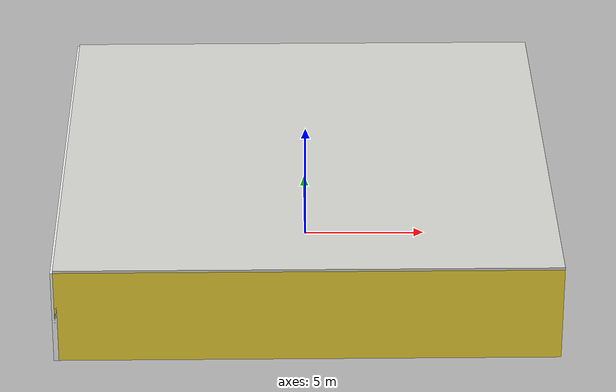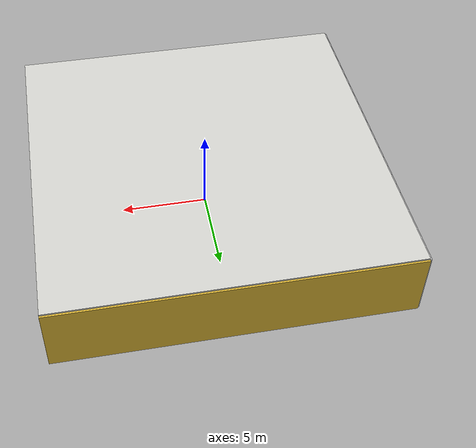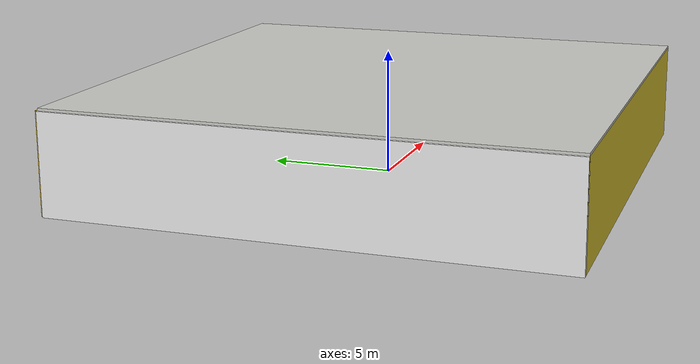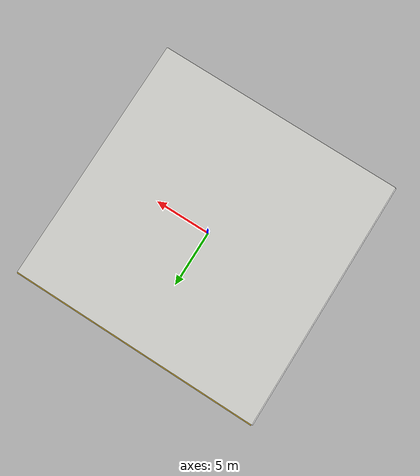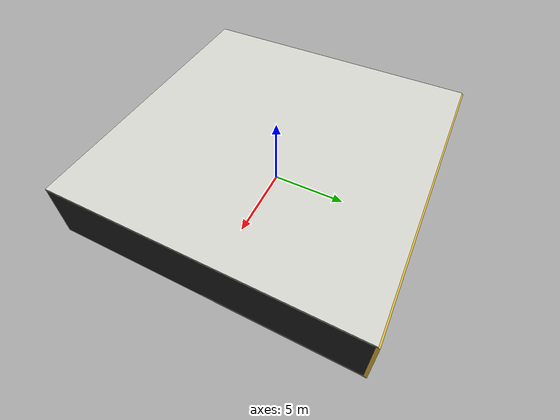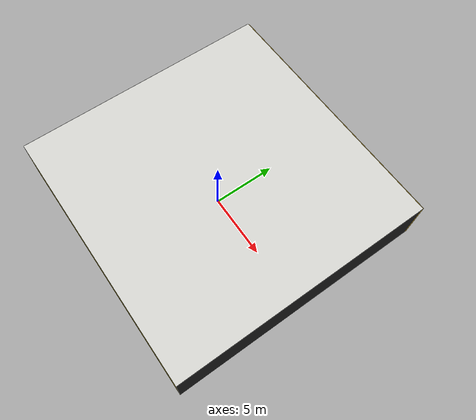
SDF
<sdf version="1.4">
 <world name="default">
  <physics type="ode">
   <max_step_size>0.001</max_step_size>
   <real_time_factor>1</real_time_factor>
   <real_time_update_rate>1000</real_time_update_rate>
   <gravity>0 0 -9.8</gravity>
  </physics>
  <scene><ambient>0.4 0.4 0.4 1</ambient><background>0.7 0.7 0.7 1</background><shadows>1</shadows></scene>
  <model name="Surrounding">
   <static>1</static>
   <link name="Ceiling">
    <collision name="Ceiling_Collision"><geometry><box><size>20 20 0.1</size></box></geometry></collision>
    <visual name="Ceiling_Visual">
     <geometry><box><size>20 20 0.1</size></box></geometry>
     <material>
      <script><uri>file://media/materials/scripts/gazebo.material</uri><name>Gazebo/CeilingTiled</name></script>
     </material>
    </visual>
    <pose>0 0 4.05 0 0 0</pose>
   </link>
   <link name="Wall_South">
    <collision name="Wall_South_Collision">
     <geometry><box><size>20 0 4</size></box></geometry>
     <pose>0 0 2 0 -0 0</pose>
    </collision>
    <visual name="Wall_South_Visual">
     <pose>0 0 2 0 -0 0</pose>
     <geometry><box><size>20 0 4</size></box></geometry>
     <material>
      <script><uri>file://media/materials/scripts/gazebo.material</uri><name>Gazebo/ZincYellow</name></script>
     </material>
    </visual>
    <velocity_decay><linear>0</linear><angular>0</angular></velocity_decay>
    <pose>0 -10 0 0 -0 0</pose>
   </link>
   <link name="Wall_East">
    <collision name="Wall_21_Collision">
     <geometry><box><size>20 0 4</size></box></geometry>
     <pose>0 0 2 0 -0 0</pose>
    </collision>
    <visual name="Wall_21_Visual">
     <pose>0 0 2 0 -0 0</pose>
     <geometry><box><size>20 0 4</size></box></geometry>
     <material>
      <script><uri>file://media/materials/scripts/gazebo.material</uri><name>Gazebo/Black</name></script>
     </material>
    </visual>
    <velocity_decay><linear>0</linear><angular>0</angular></velocity_decay>
    <pose>10 0 0 0 -0 1.5708</pose>
   </link>
   <link name="Wall_North">
    <collision name="Wall_22_Collision">
     <geometry><box><size>20 0.2 4</size></box></geometry>
     <pose>0 0 2 0 -0 0</pose>
    </collision>
    <visual name="Wall_22_Visual">
     <pose>0 0 2 0 -0 0</pose>
     <geometry><box><size>20 0.2 4</size></box></geometry>
     <material>
      <script><uri>file://media/materials/scripts/gazebo.material</uri><name>Gazebo/Gold</name></script>
     </material>
    </visual>
    <velocity_decay><linear>0</linear><angular>0</angular></velocity_decay>
    <pose>0 10 0 0 -0 0</pose>
   </link>
   <link name="Wall_West">
    <collision name="Wall_23_Collision">
     <geometry><box><size>20 0.2 4</size></box></geometry>
     <pose>0 0 2 0 -0 0</pose>
    </collision>
    <visual name="Wall_23_Visual">
     <pose>0 0 2 0 -0 0</pose>
     <geometry><box><size>20 0.2 4</size></box></geometry>
     <material>
      <script><uri>file://media/materials/scripts/gazebo.material</uri><name>Gazebo/WhiteGlow</name></script>
     </material>
    </visual>
    <velocity_decay><linear>0</linear><angular>0</angular></velocity_decay>
    <pose>-10 0 0 0 0 -1.5708</pose>
   </link>
   <link name="Ground_link">
    <collision name="collision">
     <pose>0 0 .05 0 -0 0</pose>
     <geometry><box><size>20 20 0.1</size></box></geometry>
    </collision>
    <visual name="visual">
     <pose>0 0 .05 0 -0 0</pose>
     <geometry><box><size>20 20 0.1</size></box></geometry>
     <material>
      <script><uri>file://media/materials/scripts/gazebo.material</uri><name>Gazebo/White</name></script>
     </material>
    </visual>
   </link>
   <static>1</static>
  </model>
  <spherical_coordinates>
   <surface_model>EARTH_WGS84</surface_model>
   <latitude_deg>0</latitude_deg>
   <longitude_deg>0</longitude_deg>
   <elevation>0</elevation>
   <heading_deg>0</heading_deg>
  </spherical_coordinates>
  <light name="lightball_0" type="diffuse">
   <diffuse>0.8 0.8 0.8 1</diffuse>
   <specular>0.2 0.2 0.2 1</specular>
   <attenuation>
    <range>100</range>
    <constant>0.7</constant>
    <linear>0.01</linear>
    <quadratic>0.001</quadratic>
   </attenuation>
   <direction>-0.5 0.1 -0.9</direction>
   <pose>-6.91757418397 -0.336292887298 2.29698274023 0 0 0</pose>
  </light>
  <light name="lightball_1" type="diffuse">
   <diffuse>0.8 0.8 0.8 1</diffuse>
   <specular>0.2 0.2 0.2 1</specular>
   <attenuation>
    <range>100</range>
    <constant>0.7</constant>
    <linear>0.01</linear>
    <quadratic>0.001</quadratic>
   </attenuation>
   <direction>-0.5 0.1 -0.9</direction>
   <pose>-4.98469357859 7.35562595604 1.81581535911 0 0 0</pose>
  </light>
  <light name="lightball_2" type="diffuse">
   <diffuse>0.8 0.8 0.8 1</diffuse>
   <specular>0.2 0.2 0.2 1</specular>
   <attenuation>
    <range>100</range>
    <constant>0.7</constant>
    <linear>0.01</linear>
    <quadratic>0.001</quadratic>
   </attenuation>
   <direction>-0.5 0.1 -0.9</direction>
   <pose>-9.92691574009 -9.99332740523 1.49462027829 0 0 0</pose>
  </light>
  <light name="lightball_3" type="diffuse">
   <diffuse>0.8 0.8 0.8 1</diffuse>
   <specular>0.2 0.2 0.2 1</specular>
   <attenuation>
    <range>100</range>
    <constant>0.7</constant>
    <linear>0.01</linear>
    <quadratic>0.001</quadratic>
   </attenuation>
   <direction>-0.5 0.1 -0.9</direction>
   <pose>1.50233248083 3.22421596363 1.56227856649 0 0 0</pose>
  </light>
  <light name="lightball_4" type="diffuse">
   <diffuse>0.8 0.8 0.8 1</diffuse>
   <specular>0.2 0.2 0.2 1</specular>
   <attenuation>
    <range>100</range>
    <constant>0.7</constant>
    <linear>0.01</linear>
    <quadratic>0.001</quadratic>
   </attenuation>
   <direction>-0.5 0.1 -0.9</direction>
   <pose>-7.61455705853 0.849993916667 3.58259069603 0 0 0</pose>
  </light>
  <light name="lightball_5" type="diffuse">
   <diffuse>0.8 0.8 0.8 1</diffuse>
   <specular>0.2 0.2 0.2 1</specular>
   <attenuation>
    <range>100</range>
    <constant>0.7</constant>
    <linear>0.01</linear>
    <quadratic>0.001</quadratic>
   </attenuation>
   <direction>-0.5 0.1 -0.9</direction>
   <pose>9.42647925764 -8.5240315955 1.00658761716 0 0 0</pose>
  </light>
  <light name="lightball_6" type="diffuse">
   <diffuse>0.8 0.8 0.8 1</diffuse>
   <specular>0.2 0.2 0.2 1</specular>
   <attenuation>
    <range>100</range>
    <constant>0.7</constant>
    <linear>0.01</linear>
    <quadratic>0.001</quadratic>
   </attenuation>
   <direction>-0.5 0.1 -0.9</direction>
   <pose>5.87564491231 -8.87417915666 0.876904885885 0 0 0</pose>
  </light>
  <light name="lightball_7" type="diffuse">
   <diffuse>0.8 0.8 0.8 1</diffuse>
   <specular>0.2 0.2 0.2 1</specular>
   <attenuation>
    <range>100</range>
    <constant>0.7</constant>
    <linear>0.01</linear>
    <quadratic>0.001</quadratic>
   </attenuation>
   <direction>-0.5 0.1 -0.9</direction>
   <pose>0.766086935177 0.2681473589 3.27348682312 0 0 0</pose>
  </light>
  <light name="lightball_8" type="diffuse">
   <diffuse>0.8 0.8 0.8 1</diffuse>
   <specular>0.2 0.2 0.2 1</specular>
   <attenuation>
    <range>100</range>
    <constant>0.7</constant>
    <linear>0.01</linear>
    <quadratic>0.001</quadratic>
   </attenuation>
   <direction>-0.5 0.1 -0.9</direction>
   <pose>3.48558161023 -3.67317749882 2.87715166579 0 0 0</pose>
  </light>
  <light name="lightball_9" type="diffuse">
   <diffuse>0.8 0.8 0.8 1</diffuse>
   <specular>0.2 0.2 0.2 1</specular>
   <attenuation>
    <range>100</range>
    <constant>0.7</constant>
    <linear>0.01</linear>
    <quadratic>0.001</quadratic>
   </attenuation>
   <direction>-0.5 0.1 -0.9</direction>
   <pose>-0.371508159079 -9.45678300232 2.34289552052 0 0 0</pose>
  </light>
  <light name="lightball_10" type="diffuse">
   <diffuse>0.8 0.8 0.8 1</diffuse>
   <specular>0.2 0.2 0.2 1</specular>
   <attenuation>
    <range>100</range>
    <constant>0.7</constant>
    <linear>0.01</linear>
    <quadratic>0.001</quadratic>
   </attenuation>
   <direction>-0.5 0.1 -0.9</direction>
   <pose>-1.17956673407 -7.33612454215 0.855936445213 0 0 0</pose>
  </light>
  <include>
   <uri>model://textured_shapes</uri>
   <pose>-3.75764248063 -5.24849214154 0 0 0 2.81809932388</pose>
  </include>
  <include>
   <uri>model://textured_shapes</uri>
   <pose>-3.83775474988 7.21098635594 0 0 0 2.33054544448</pose>
  </include>
  <include><uri>model://table</uri><pose>4.31507981613 4.08992291775 0 0 0 1.68256351216</pose></include>
  <include>
   <uri>model://construction_cone</uri>
   <pose>4.9341937116 7.7878998793 0 0 0 0.116738674569</pose>
  </include>
  <include><uri>model://table</uri><pose>7.1707373835 -2.27744695906 0 0 0 0.116642709235</pose></include>
 </world>
</sdf>

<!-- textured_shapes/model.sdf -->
<sdf version="1.6">
  <model name="textured_shapes">
    <pose>0 0 0.5 0 0 0</pose>
    <link name="box">
      <pose>0 -1.5 0 0 0 0</pose>
      <collision name="collision">
        <geometry>
          <box>
            <size>1 1 1</size>
          </box>
        </geometry>
      </collision>
      <visual name="visual">
        <geometry>
          <box>
            <size>1 1 1</size>
          </box>
        </geometry>
        <material>
          <script>
            <uri>model://../model_source/models/textured_shapes/materials/scripts</uri>
            <uri>model://../model_source/models/textured_shapes/materials/textures</uri>
            <name>TexturedShape/Squares</name>
          </script>
        </material>
      </visual>
    </link>
    <link name="sphere">
      <collision name="collision">
        <geometry>
          <sphere>
            <radius>0.5</radius>
          </sphere>
        </geometry>
      </collision>
      <visual name="visual">
        <geometry>
          <sphere>
            <radius>0.5</radius>
          </sphere>
        </geometry>
        <material>
          <script>
            <uri>model://../model_source/models/textured_shapes/materials/scripts</uri>
            <uri>model://../model_source/models/textured_shapes/materials/textures</uri>
            <name>TexturedShape/Squares</name>
          </script>
        </material>
      </visual>
    </link>
    <link name="cylinder">
      <pose>0 1.5 0 0 0 0</pose>
      <collision name="collision">
        <geometry>
          <cylinder>
            <radius>0.5</radius>
            <length>1</length>
          </cylinder>
        </geometry>
      </collision>
      <visual name="visual">
        <geometry>
          <cylinder>
            <radius>0.5</radius>
            <length>1</length>
          </cylinder>
        </geometry>
        <material>
          <script>
            <uri>model://../model_source/models/textured_shapes/materials/scripts</uri>
            <uri>model://../model_source/models/textured_shapes/materials/textures</uri>
            <name>TexturedShape/Squares</name>
          </script>
        </material>
      </visual>
    </link>
  </model>
</sdf>

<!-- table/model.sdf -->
<sdf version="1.5">
  <model name="table">
    <static>true</static>
    <link name="link">
      <collision name="surface">
        <pose>0 0 1.0 0 0 0</pose>
        <geometry>
          <box>
            <size>1.5 0.8 0.03</size>
          </box>
        </geometry>
        <surface>
          <friction>
            <ode>
              <mu>0.6</mu>
              <mu2>0.6</mu2>
            </ode>
          </friction>
        </surface>
      </collision>
      <visual name="visual1">
        <pose>0 0 1.0 0 0 0</pose>
        <geometry>
          <box>
            <size>1.5 0.8 0.03</size>
          </box>
        </geometry>
        <material>
          <script>
            <uri>model://media/materials/scripts/gazebo.material</uri>
            <name>Gazebo/Wood</name>
          </script>
        </material>
      </visual>
      <collision name="front_left_leg">
        <pose>0.68 0.38 0.5 0 0 0</pose>
        <geometry>
          <cylinder>
            <radius>0.02</radius>
            <length>1.0</length>
          </cylinder>
        </geometry>
      </collision>
      <visual name="front_left_leg">
        <pose>0.68 0.38 0.5 0 0 0</pose>
        <geometry>
          <cylinder>
            <radius>0.02</radius>
            <length>1.0</length>
          </cylinder>
        </geometry>
        <material>
          <script>
            <uri>model://media/materials/scripts/gazebo.material</uri>
            <name>Gazebo/Grey</name>
          </script>
        </material>
      </visual>
      <collision name="front_right_leg">
        <pose>0.68 -0.38 0.5 0 0 0</pose>
        <geometry>
          <cylinder>
            <radius>0.02</radius>
            <length>1.0</length>
          </cylinder>
        </geometry>
      </collision>
      <visual name="front_right_leg">
        <pose>0.68 -0.38 0.5 0 0 0</pose>
        <geometry>
          <cylinder>
            <radius>0.02</radius>
            <length>1.0</length>
          </cylinder>
        </geometry>
        <material>
          <script>
            <uri>model://media/materials/scripts/gazebo.material</uri>
            <name>Gazebo/Grey</name>
          </script>
        </material>
      </visual>
      <collision name="back_right_leg">
        <pose>-0.68 -0.38 0.5 0 0 0</pose>
        <geometry>
          <cylinder>
            <radius>0.02</radius>
            <length>1.0</length>
          </cylinder>
        </geometry>
      </collision>
      <visual name="back_right_leg">
        <pose>-0.68 -0.38 0.5 0 0 0</pose>
        <geometry>
          <cylinder>
            <radius>0.02</radius>
            <length>1.0</length>
          </cylinder>
        </geometry>
        <material>
          <script>
            <uri>model://media/materials/scripts/gazebo.material</uri>
            <name>Gazebo/Grey</name>
          </script>
        </material>
      </visual>
      <collision name="back_left_leg">
        <pose>-0.68 0.38 0.5 0 0 0</pose>
        <geometry>
          <cylinder>
            <radius>0.02</radius>
            <length>1.0</length>
          </cylinder>
        </geometry>
      </collision>
      <visual name="back_left_leg">
        <pose>-0.68 0.38 0.5 0 0 0</pose>
        <geometry>
          <cylinder>
            <radius>0.02</radius>
            <length>1.0</length>
          </cylinder>
        </geometry>
        <material>
          <script>
            <uri>model://media/materials/scripts/gazebo.material</uri>
            <name>Gazebo/Grey</name>
          </script>
        </material>
      </visual>
    </link>
  </model>
</sdf>

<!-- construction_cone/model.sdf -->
<sdf version="1.5">
  <model name="Construction Cone">
    <link name="link">
      <collision name="collision">
        <geometry>
          <mesh>
            <scale>10 10 10</scale>
            <uri>file://isr-testbed/construction_cone/meshes/construction_cone.dae</uri>
          </mesh>
        </geometry>
      </collision>
      <visual name="visual">
        <geometry>
          <mesh>
            <scale>10 10 10</scale>
            <uri>file://isr-testbed/construction_cone/meshes/construction_cone.dae</uri>
          </mesh>
        </geometry>
      </visual>
    </link>
  </model>
</sdf>
